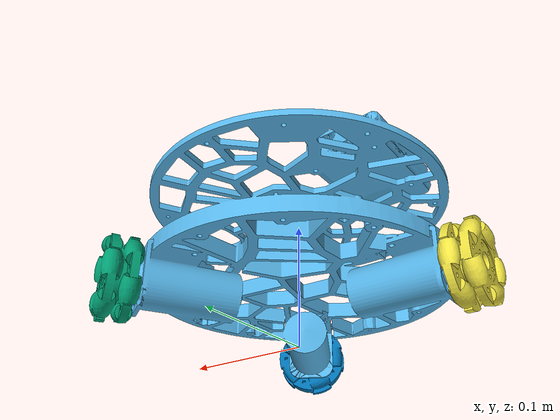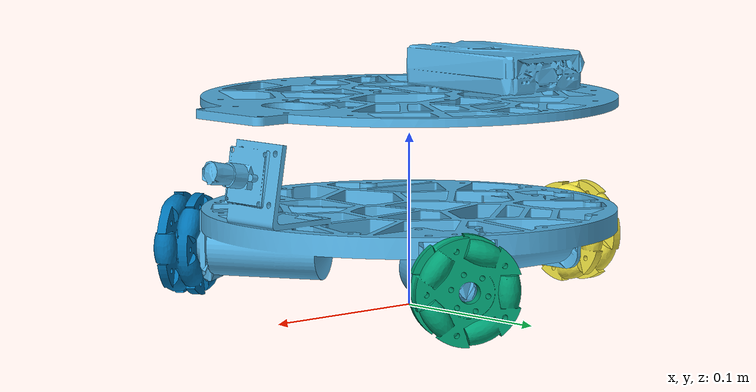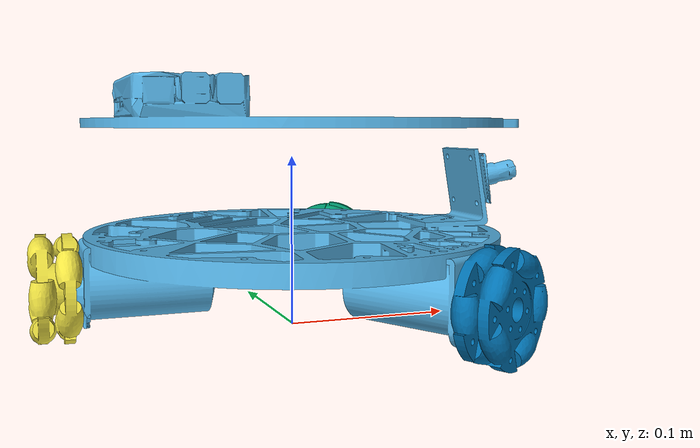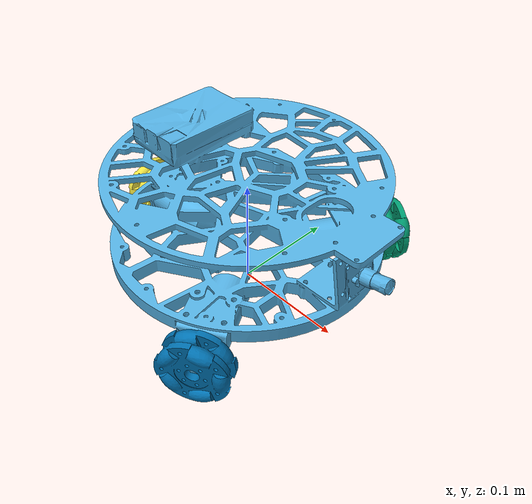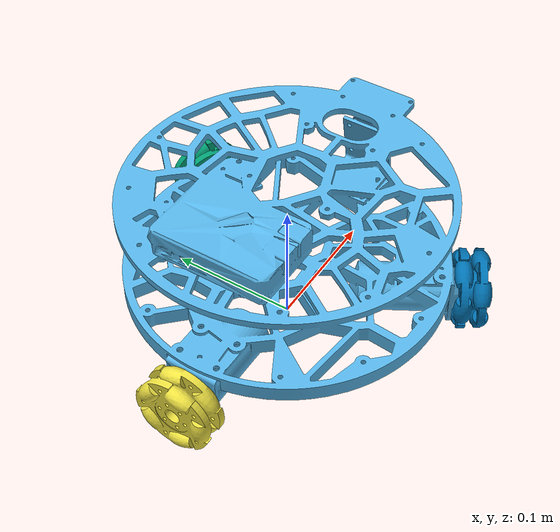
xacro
<?xml version="1.0"?>
<!-- mmr_bot chassis: kiwi drive, three omniwheels at 120 degrees.          -->
<!-- EVERY dimension below is measured from the Fusion 360 STEP export       -->
<!-- (tools/step_parse.py -> tools/extract_meshes.py). Nothing is invented.  -->
<!-- Provenance for each value is in README.md, section "Derived geometry".  -->
<!-- Frame convention (brief section 3.3):                                   -->
<!--   base_footprint  ground plane, directly under the wheel-triad centre   -->
<!--   base_link       underside of the base plate, +X forward, +Z up        -->
<!--   wheel_i_link    at the axle; local +X is the spin axis, pointing      -->
<!--                   radially OUTWARD along the mounting angle             -->
<robot xmlns:xacro="http://www.ros.org/wiki/xacro">

  <!-- GEOMETRY - edit here and nowhere else                              -->

  <xacro:property name="wheel_radius"        value="0.030"/>
  <xacro:property name="wheel_width"         value="0.019"/>

  <!-- Centre of the wheel triad to each wheel centre. All three measure
       135.500 mm from the triad centroid, equal to better than 0.001 mm. -->
  <xacro:property name="base_radius"         value="0.135500"/>

  <!-- Mounting angles, degrees CCW from +X (forward). Confirmed: forward is
       CAD -Y, the direction the lidar, camera and arm all face. -->
  <xacro:property name="wheel_0_angle_deg"   value="60"/>
  <xacro:property name="wheel_1_angle_deg"   value="180"/>
  <xacro:property name="wheel_2_angle_deg"   value="300"/>

  <!-- Ground to base_link. base_link is the underside of the base plate;
       the plate measures z = 0.0001..12.0001 mm in this frame. -->
  <xacro:property name="base_link_height"    value="0.045"/>

  <xacro:property name="base_plate_radius"   value="0.120"/>
  <xacro:property name="base_plate_thick"    value="0.012"/>
  <xacro:property name="base_plate_z"        value="0.0"/>

  <xacro:property name="top_plate_radius"    value="0.120"/>
  <xacro:property name="top_plate_thick"     value="0.005"/>
  <xacro:property name="top_plate_z"         value="0.072"/>

  <xacro:property name="wheel_z" value="${wheel_radius - base_link_height}"/>

  <xacro:property name="use_inertial" value="true"/>

  <xacro:property name="chassis_mass" value="1.0"/>
  <xacro:property name="wheel_mass"   value="0.100"/>   <!-- TODO(weigh me) -->

  <xacro:property name="deg" value="${pi/180.0}"/>

  <xacro:property name="mesh_visual"    value="package://mmr_pkg/meshes/visual"/>
  <xacro:property name="mesh_collision" value="package://mmr_pkg/meshes/collision"/>

  <!-- base_footprint                                                      -->
  <!-- link, and a footprint frame is massless by definition.              -->
  <link name="base_footprint"/>

  <joint name="base_footprint_joint" type="fixed">
    <origin xyz="0 0 ${base_link_height}" rpy="0 0 0"/>
    <parent link="base_footprint"/>
    <child  link="base_link"/>
  </joint>

  <!-- base_link                                                           -->
  <link name="base_link">
    <visual>
      <origin xyz="0 0 0" rpy="0 0 0"/>
      <geometry>
        <mesh filename="${mesh_visual}/base_link.obj"/>
      </geometry>
    </visual>

    <!-- Base plate: cylinder primitive, as the brief requires. -->
    <collision>
      <origin xyz="0 0 ${base_plate_z + base_plate_thick/2}" rpy="0 0 0"/>
      <geometry>
        <cylinder radius="${base_plate_radius}" length="${base_plate_thick}"/>
      </geometry>
    </collision>

    <!-- Top plate: cylinder primitive (forward lidar tab not included). -->
    <collision>
      <origin xyz="0 0 ${top_plate_z + top_plate_thick/2}" rpy="0 0 0"/>
      <geometry>
        <cylinder radius="${top_plate_radius}" length="${top_plate_thick}"/>
      </geometry>
    </collision>

    <!-- Motor + mount pod under each wheel. One convex hull, extracted in a
         canonical 0-degree frame, reused at all three mounting angles. -->
    <xacro:macro name="motor_pod_collision" params="angle_deg">
      <collision>
        <origin xyz="0 0 0" rpy="0 0 ${angle_deg * deg}"/>
        <geometry>
          <mesh filename="${mesh_collision}/motor_pod.stl"/>
        </geometry>
      </collision>
    </xacro:macro>
    <xacro:motor_pod_collision angle_deg="${wheel_0_angle_deg}"/>
    <xacro:motor_pod_collision angle_deg="${wheel_1_angle_deg}"/>
    <xacro:motor_pod_collision angle_deg="${wheel_2_angle_deg}"/>

    <!-- Camera pod and Pi stack: convex hulls, already in base_link frame. -->
    <collision>
      <origin xyz="0 0 0" rpy="0 0 0"/>
      <geometry>
        <mesh filename="${mesh_collision}/camera_pod.stl"/>
      </geometry>
    </collision>
    <collision>
      <origin xyz="0 0 0" rpy="0 0 0"/>
      <geometry>
        <mesh filename="${mesh_collision}/pi_stack.stl"/>
      </geometry>
    </collision>

    <xacro:if value="${use_inertial}">
      <xacro:inertial_exact mass="${chassis_mass}"
          ox="-0.000277" oy="-0.000032" oz="0.021827"
          ixx="0.004760788" iyy="0.005840846" izz="0.007861537"
          ixy="0.000000057" ixz="0.000351742" iyz="0.000001738"/>
    </xacro:if>
  </link>

  <!-- Wheels                                                              -->
  <!-- The link frame is base_link -> Trans(base_radius @ angle, wheel_z)   -->
  <!--                             -> Rz(angle)                            -->
  <!-- so local +X is radially outward and IS the spin axis. wheel.obj was  -->
  <!-- exported into exactly this frame, which is why one mesh serves all   -->
  <!-- three wheels. Verified after export: radius 0.03001 m about local    -->
  <!-- +X, half-width 0.01365 m.                                           -->
  <xacro:macro name="omni_wheel" params="index angle_deg">
    <joint name="wheel_${index}_joint" type="continuous">
      <origin xyz="${base_radius * cos(angle_deg * deg)}
                   ${base_radius * sin(angle_deg * deg)}
                   ${wheel_z}"
              rpy="0 0 ${angle_deg * deg}"/>
      <parent link="base_link"/>
      <child  link="wheel_${index}_link"/>
      <axis xyz="1 0 0"/>
    </joint>

    <link name="wheel_${index}_link">
      <visual>
        <origin xyz="0 0 0" rpy="0 0 0"/>
        <geometry>
          <mesh filename="${mesh_visual}/wheel.obj"/>
        </geometry>
      </visual>

      <!-- Cylinder primitive, as the brief requires. A URDF cylinder is
           built about +Z, so rotate it onto the +X spin axis. -->
      <collision>
        <origin xyz="0 0 0" rpy="0 ${pi/2} 0"/>
        <geometry>
          <cylinder radius="${wheel_radius}" length="${wheel_width}"/>
        </geometry>
      </collision>

      <!-- Solid cylinder about local +X, exact for the modelled collision
           shape. The MASS is the unsourced number - see the wheel_mass
           property at the top of this file. -->
      <xacro:if value="${use_inertial}">
        <xacro:inertial_cylinder_x mass="${wheel_mass}"
               radius="${wheel_radius}" length="${wheel_width}"/>
      </xacro:if>
    </link>
  </xacro:macro>

  <xacro:omni_wheel index="0" angle_deg="${wheel_0_angle_deg}"/>
  <xacro:omni_wheel index="1" angle_deg="${wheel_1_angle_deg}"/>
  <xacro:omni_wheel index="2" angle_deg="${wheel_2_angle_deg}"/>

</robot>
